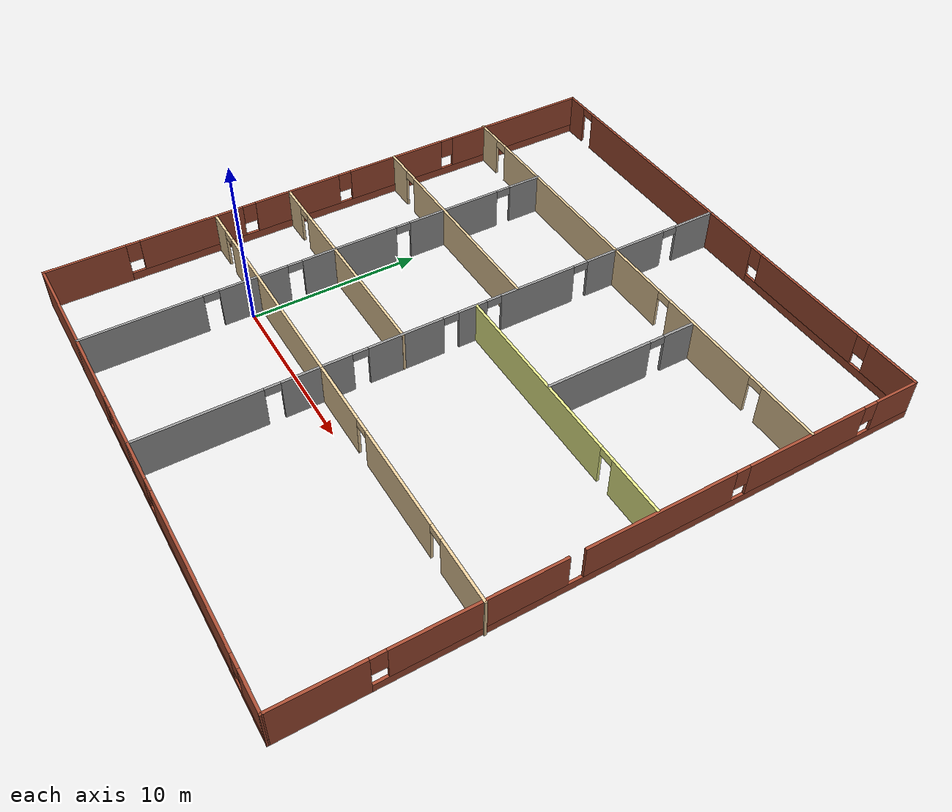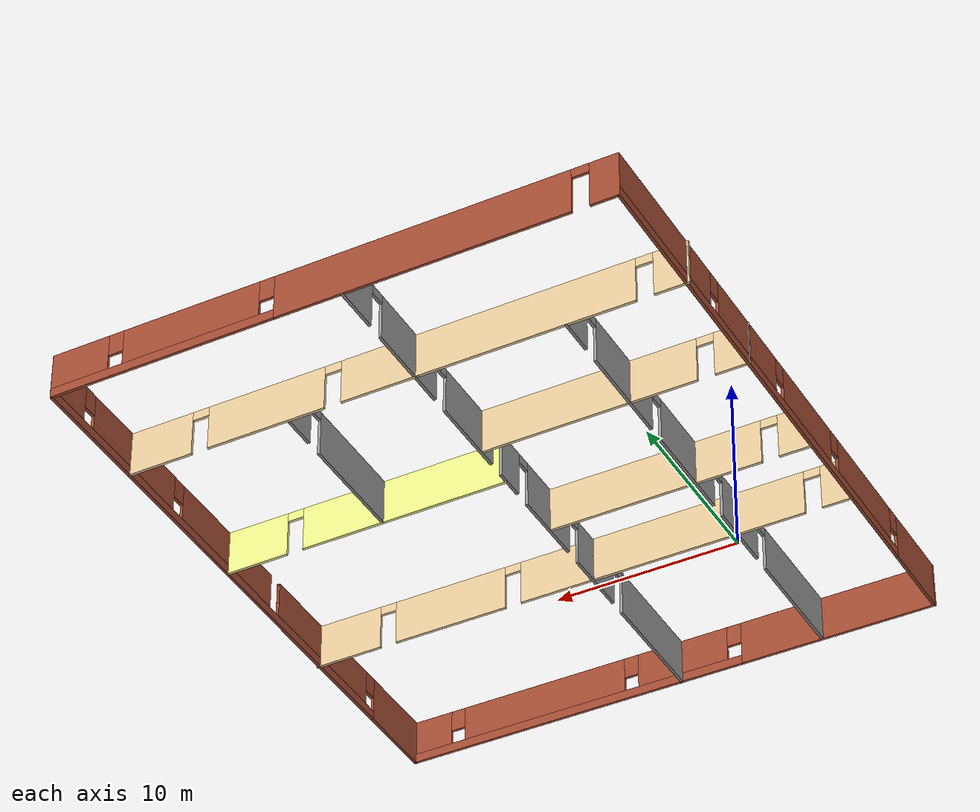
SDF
<?xml version='1.0'?>
<sdf version='1.7'>
  <model name='house'>
    <pose>8.50063 8.09856 0 0 -0 0</pose>
    <link name='Wall_10'>
      <pose>0.012019 -17.425 0 0 -0 -0.001132</pose>
      <visual name='Wall_10_Visual_0'>
        <pose>-9.64664 0 1.25 0 -0 0</pose>
        <geometry>
          <box>
            <size>10.7406 0.15 2.5</size>
          </box>
        </geometry>
        <material>
          <script>
            <uri>file://media/materials/scripts/gazebo.material</uri>
            <name>Gazebo/Bricks</name>
          </script>
          <ambient>1 1 1 1</ambient>
        </material>
        <meta>
          <layer>0</layer>
        </meta>
      </visual>
      <collision name='Wall_10_Collision_0'>
        <geometry>
          <box>
            <size>10.7406 0.15 2.5</size>
          </box>
        </geometry>
        <pose>-9.64664 0 1.25 0 -0 0</pose>
      </collision>
      <visual name='Wall_10_Visual_1'>
        <pose>5.37028 0 0.25 0 -0 0</pose>
        <geometry>
          <box>
            <size>19.2933 0.15 0.5</size>
          </box>
        </geometry>
        <material>
          <script>
            <uri>file://media/materials/scripts/gazebo.material</uri>
            <name>Gazebo/Bricks</name>
          </script>
          <ambient>1 1 1 1</ambient>
        </material>
        <meta>
          <layer>0</layer>
        </meta>
      </visual>
      <collision name='Wall_10_Collision_1'>
        <geometry>
          <box>
            <size>19.2933 0.15 0.5</size>
          </box>
        </geometry>
        <pose>5.37028 0 0.25 0 -0 0</pose>
      </collision>
      <visual name='Wall_10_Visual_2'>
        <pose>-0.916018 0 1.5 0 -0 0</pose>
        <geometry>
          <box>
            <size>5.12068 0.15 2</size>
          </box>
        </geometry>
        <material>
          <script>
            <uri>file://media/materials/scripts/gazebo.material</uri>
            <name>Gazebo/Bricks</name>
          </script>
          <ambient>1 1 1 1</ambient>
        </material>
        <meta>
          <layer>0</layer>
        </meta>
      </visual>
      <collision name='Wall_10_Collision_2'>
        <geometry>
          <box>
            <size>5.12068 0.15 2</size>
          </box>
        </geometry>
        <pose>-0.916018 0 1.5 0 -0 0</pose>
      </collision>
      <visual name='Wall_10_Visual_3'>
        <pose>7.18227 0 1.5 0 -0 0</pose>
        <geometry>
          <box>
            <size>9.47591 0.15 2</size>
          </box>
        </geometry>
        <material>
          <script>
            <uri>file://media/materials/scripts/gazebo.material</uri>
            <name>Gazebo/Bricks</name>
          </script>
          <ambient>1 1 1 1</ambient>
        </material>
        <meta>
          <layer>0</layer>
        </meta>
      </visual>
      <collision name='Wall_10_Collision_3'>
        <geometry>
          <box>
            <size>9.47591 0.15 2</size>
          </box>
        </geometry>
        <pose>7.18227 0 1.5 0 -0 0</pose>
      </collision>
      <visual name='Wall_10_Visual_4'>
        <pose>13.8686 0 1.5 0 -0 0</pose>
        <geometry>
          <box>
            <size>2.2967 0.15 2</size>
          </box>
        </geometry>
        <material>
          <script>
            <uri>file://media/materials/scripts/gazebo.material</uri>
            <name>Gazebo/Bricks</name>
          </script>
          <ambient>1 1 1 1</ambient>
        </material>
        <meta>
          <layer>0</layer>
        </meta>
      </visual>
      <collision name='Wall_10_Collision_4'>
        <geometry>
          <box>
            <size>2.2967 0.15 2</size>
          </box>
        </geometry>
        <pose>13.8686 0 1.5 0 -0 0</pose>
      </collision>
      <visual name='Wall_10_Visual_5'>
        <pose>-3.87636 0 1.9 0 -0 0</pose>
        <geometry>
          <box>
            <size>0.8 0.15 1.2</size>
          </box>
        </geometry>
        <material>
          <script>
            <uri>file://media/materials/scripts/gazebo.material</uri>
            <name>Gazebo/Bricks</name>
          </script>
          <ambient>1 1 1 1</ambient>
        </material>
        <meta>
          <layer>0</layer>
        </meta>
      </visual>
      <collision name='Wall_10_Collision_5'>
        <geometry>
          <box>
            <size>0.8 0.15 1.2</size>
          </box>
        </geometry>
        <pose>-3.87636 0 1.9 0 -0 0</pose>
      </collision>
      <visual name='Wall_10_Visual_6'>
        <pose>2.04432 0 1.9 0 -0 0</pose>
        <geometry>
          <box>
            <size>0.8 0.15 1.2</size>
          </box>
        </geometry>
        <material>
          <script>
            <uri>file://media/materials/scripts/gazebo.material</uri>
            <name>Gazebo/Bricks</name>
          </script>
          <ambient>1 1 1 1</ambient>
        </material>
        <meta>
          <layer>0</layer>
        </meta>
      </visual>
      <collision name='Wall_10_Collision_6'>
        <geometry>
          <box>
            <size>0.8 0.15 1.2</size>
          </box>
        </geometry>
        <pose>2.04432 0 1.9 0 -0 0</pose>
      </collision>
      <visual name='Wall_10_Visual_7'>
        <pose>12.3202 0 1.9 0 -0 0</pose>
        <geometry>
          <box>
            <size>0.8 0.15 1.2</size>
          </box>
        </geometry>
        <material>
          <script>
            <uri>file://media/materials/scripts/gazebo.material</uri>
            <name>Gazebo/Bricks</name>
          </script>
          <ambient>1 1 1 1</ambient>
        </material>
        <meta>
          <layer>0</layer>
        </meta>
      </visual>
      <collision name='Wall_10_Collision_7'>
        <geometry>
          <box>
            <size>0.8 0.15 1.2</size>
          </box>
        </geometry>
        <pose>12.3202 0 1.9 0 -0 0</pose>
      </collision>
    </link>
    <link name='Wall_12'>
      <pose>-14.9299 0.016958 0 0 -0 1.5708</pose>
      <visual name='Wall_12_Visual_0'>
        <pose>-15.1513 0 1.25 0 -0 0</pose>
        <geometry>
          <box>
            <size>4.69739 0.15 2.5</size>
          </box>
        </geometry>
        <material>
          <script>
            <uri>file://media/materials/scripts/gazebo.material</uri>
            <name>Gazebo/Bricks</name>
          </script>
          <ambient>1 1 1 1</ambient>
        </material>
        <meta>
          <layer>0</layer>
        </meta>
      </visual>
      <collision name='Wall_12_Collision_0'>
        <geometry>
          <box>
            <size>4.69739 0.15 2.5</size>
          </box>
        </geometry>
        <pose>-15.1513 0 1.25 0 -0 0</pose>
      </collision>
      <visual name='Wall_12_Visual_1'>
        <pose>2.34869 0 0.25 0 -0 0</pose>
        <geometry>
          <box>
            <size>30.3026 0.15 0.5</size>
          </box>
        </geometry>
        <material>
          <script>
            <uri>file://media/materials/scripts/gazebo.material</uri>
            <name>Gazebo/Bricks</name>
          </script>
          <ambient>1 1 1 1</ambient>
        </material>
        <meta>
          <layer>0</layer>
        </meta>
      </visual>
      <collision name='Wall_12_Collision_1'>
        <geometry>
          <box>
            <size>30.3026 0.15 0.5</size>
          </box>
        </geometry>
        <pose>2.34869 0 0.25 0 -0 0</pose>
      </collision>
      <visual name='Wall_12_Visual_2'>
        <pose>-8.89789 0 1.5 0 -0 0</pose>
        <geometry>
          <box>
            <size>6.20945 0.15 2</size>
          </box>
        </geometry>
        <material>
          <script>
            <uri>file://media/materials/scripts/gazebo.material</uri>
            <name>Gazebo/Bricks</name>
          </script>
          <ambient>1 1 1 1</ambient>
        </material>
        <meta>
          <layer>0</layer>
        </meta>
      </visual>
      <collision name='Wall_12_Collision_2'>
        <geometry>
          <box>
            <size>6.20945 0.15 2</size>
          </box>
        </geometry>
        <pose>-8.89789 0 1.5 0 -0 0</pose>
      </collision>
      <visual name='Wall_12_Visual_3'>
        <pose>-2.29675 0 1.5 0 -0 0</pose>
        <geometry>
          <box>
            <size>5.39282 0.15 2</size>
          </box>
        </geometry>
        <material>
          <script>
            <uri>file://media/materials/scripts/gazebo.material</uri>
            <name>Gazebo/Bricks</name>
          </script>
          <ambient>1 1 1 1</ambient>
        </material>
        <meta>
          <layer>0</layer>
        </meta>
      </visual>
      <collision name='Wall_12_Collision_3'>
        <geometry>
          <box>
            <size>5.39282 0.15 2</size>
          </box>
        </geometry>
        <pose>-2.29675 0 1.5 0 -0 0</pose>
      </collision>
      <visual name='Wall_12_Visual_4'>
        <pose>4.33841 0 1.5 0 -0 0</pose>
        <geometry>
          <box>
            <size>6.2775 0.15 2</size>
          </box>
        </geometry>
        <material>
          <script>
            <uri>file://media/materials/scripts/gazebo.material</uri>
            <name>Gazebo/Bricks</name>
          </script>
          <ambient>1 1 1 1</ambient>
        </material>
        <meta>
          <layer>0</layer>
        </meta>
      </visual>
      <collision name='Wall_12_Collision_4'>
        <geometry>
          <box>
            <size>6.2775 0.15 2</size>
          </box>
        </geometry>
        <pose>4.33841 0 1.5 0 -0 0</pose>
      </collision>
      <visual name='Wall_12_Visual_5'>
        <pose>12.8886 0 1.5 0 -0 0</pose>
        <geometry>
          <box>
            <size>9.22284 0.15 2</size>
          </box>
        </geometry>
        <material>
          <script>
            <uri>file://media/materials/scripts/gazebo.material</uri>
            <name>Gazebo/Bricks</name>
          </script>
          <ambient>1 1 1 1</ambient>
        </material>
        <meta>
          <layer>0</layer>
        </meta>
      </visual>
      <collision name='Wall_12_Collision_5'>
        <geometry>
          <box>
            <size>9.22284 0.15 2</size>
          </box>
        </geometry>
        <pose>12.8886 0 1.5 0 -0 0</pose>
      </collision>
      <visual name='Wall_12_Visual_6'>
        <pose>-12.4026 0 1.9 0 -0 0</pose>
        <geometry>
          <box>
            <size>0.8 0.15 1.2</size>
          </box>
        </geometry>
        <material>
          <script>
            <uri>file://media/materials/scripts/gazebo.material</uri>
            <name>Gazebo/Bricks</name>
          </script>
          <ambient>1 1 1 1</ambient>
        </material>
        <meta>
          <layer>0</layer>
        </meta>
      </visual>
      <collision name='Wall_12_Collision_6'>
        <geometry>
          <box>
            <size>0.8 0.15 1.2</size>
          </box>
        </geometry>
        <pose>-12.4026 0 1.9 0 -0 0</pose>
      </collision>
      <visual name='Wall_12_Visual_7'>
        <pose>-5.39316 0 1.9 0 -0 0</pose>
        <geometry>
          <box>
            <size>0.8 0.15 1.2</size>
          </box>
        </geometry>
        <material>
          <script>
            <uri>file://media/materials/scripts/gazebo.material</uri>
            <name>Gazebo/Bricks</name>
          </script>
          <ambient>1 1 1 1</ambient>
        </material>
        <meta>
          <layer>0</layer>
        </meta>
      </visual>
      <collision name='Wall_12_Collision_7'>
        <geometry>
          <box>
            <size>0.8 0.15 1.2</size>
          </box>
        </geometry>
        <pose>-5.39316 0 1.9 0 -0 0</pose>
      </collision>
      <visual name='Wall_12_Visual_8'>
        <pose>0.799657 0 1.9 0 -0 0</pose>
        <geometry>
          <box>
            <size>0.8 0.15 1.2</size>
          </box>
        </geometry>
        <material>
          <script>
            <uri>file://media/materials/scripts/gazebo.material</uri>
            <name>Gazebo/Bricks</name>
          </script>
          <ambient>1 1 1 1</ambient>
        </material>
        <meta>
          <layer>0</layer>
        </meta>
      </visual>
      <collision name='Wall_12_Collision_8'>
        <geometry>
          <box>
            <size>0.8 0.15 1.2</size>
          </box>
        </geometry>
        <pose>0.799657 0 1.9 0 -0 0</pose>
      </collision>
      <visual name='Wall_12_Visual_9'>
        <pose>7.87716 0 1.9 0 -0 0</pose>
        <geometry>
          <box>
            <size>0.8 0.15 1.2</size>
          </box>
        </geometry>
        <material>
          <script>
            <uri>file://media/materials/scripts/gazebo.material</uri>
            <name>Gazebo/Bricks</name>
          </script>
          <ambient>1 1 1 1</ambient>
        </material>
        <meta>
          <layer>0</layer>
        </meta>
      </visual>
      <collision name='Wall_12_Collision_9'>
        <geometry>
          <box>
            <size>0.8 0.15 1.2</size>
          </box>
        </geometry>
        <pose>7.87716 0 1.9 0 -0 0</pose>
      </collision>
    </link>
    <link name='Wall_16'>
      <pose>-0.004898 17.442 0 0 -0 0</pose>
      <visual name='Wall_16_Visual_0'>
        <pose>-14.2483 0 1.25 0 -0 0</pose>
        <geometry>
          <box>
            <size>1.50349 0.15 2.5</size>
          </box>
        </geometry>
        <material>
          <script>
            <uri>file://media/materials/scripts/gazebo.material</uri>
            <name>Gazebo/Bricks</name>
          </script>
          <ambient>1 1 1 1</ambient>
        </material>
        <meta>
          <layer>0</layer>
        </meta>
      </visual>
      <collision name='Wall_16_Collision_0'>
        <geometry>
          <box>
            <size>1.50349 0.15 2.5</size>
          </box>
        </geometry>
        <pose>-14.2483 0 1.25 0 -0 0</pose>
      </collision>
      <visual name='Wall_16_Visual_1'>
        <pose>-4.88918 0 1.25 0 -0 0</pose>
        <geometry>
          <box>
            <size>15.4147 0.15 2.5</size>
          </box>
        </geometry>
        <material>
          <script>
            <uri>file://media/materials/scripts/gazebo.material</uri>
            <name>Gazebo/Bricks</name>
          </script>
          <ambient>1 1 1 1</ambient>
        </material>
        <meta>
          <layer>0</layer>
        </meta>
      </visual>
      <collision name='Wall_16_Collision_1'>
        <geometry>
          <box>
            <size>15.4147 0.15 2.5</size>
          </box>
        </geometry>
        <pose>-4.88918 0 1.25 0 -0 0</pose>
      </collision>
      <visual name='Wall_16_Visual_2'>
        <pose>8.90907 0 0.25 0 -0 0</pose>
        <geometry>
          <box>
            <size>12.1819 0.15 0.5</size>
          </box>
        </geometry>
        <material>
          <script>
            <uri>file://media/materials/scripts/gazebo.material</uri>
            <name>Gazebo/Bricks</name>
          </script>
          <ambient>1 1 1 1</ambient>
        </material>
        <meta>
          <layer>0</layer>
        </meta>
      </visual>
      <collision name='Wall_16_Collision_2'>
        <geometry>
          <box>
            <size>12.1819 0.15 0.5</size>
          </box>
        </geometry>
        <pose>8.90907 0 0.25 0 -0 0</pose>
      </collision>
      <visual name='Wall_16_Visual_3'>
        <pose>7.33535 0 1.5 0 -0 0</pose>
        <geometry>
          <box>
            <size>7.4344 0.15 2</size>
          </box>
        </geometry>
        <material>
          <script>
            <uri>file://media/materials/scripts/gazebo.material</uri>
            <name>Gazebo/Bricks</name>
          </script>
          <ambient>1 1 1 1</ambient>
        </material>
        <meta>
          <layer>0</layer>
        </meta>
      </visual>
      <collision name='Wall_16_Collision_3'>
        <geometry>
          <box>
            <size>7.4344 0.15 2</size>
          </box>
        </geometry>
        <pose>7.33535 0 1.5 0 -0 0</pose>
      </collision>
      <visual name='Wall_16_Visual_4'>
        <pose>13.4263 0 1.5 0 -0 0</pose>
        <geometry>
          <box>
            <size>3.14745 0.15 2</size>
          </box>
        </geometry>
        <material>
          <script>
            <uri>file://media/materials/scripts/gazebo.material</uri>
            <name>Gazebo/Bricks</name>
          </script>
          <ambient>1 1 1 1</ambient>
        </material>
        <meta>
          <layer>0</layer>
        </meta>
      </visual>
      <collision name='Wall_16_Collision_4'>
        <geometry>
          <box>
            <size>3.14745 0.15 2</size>
          </box>
        </geometry>
        <pose>13.4263 0 1.5 0 -0 0</pose>
      </collision>
      <visual name='Wall_16_Visual_5'>
        <pose>3.21814 0 1.9 0 -0 0</pose>
        <geometry>
          <box>
            <size>0.8 0.15 1.2</size>
          </box>
        </geometry>
        <material>
          <script>
            <uri>file://media/materials/scripts/gazebo.material</uri>
            <name>Gazebo/Bricks</name>
          </script>
          <ambient>1 1 1 1</ambient>
        </material>
        <meta>
          <layer>0</layer>
        </meta>
      </visual>
      <collision name='Wall_16_Collision_5'>
        <geometry>
          <box>
            <size>0.8 0.15 1.2</size>
          </box>
        </geometry>
        <pose>3.21814 0 1.9 0 -0 0</pose>
      </collision>
      <visual name='Wall_16_Visual_6'>
        <pose>11.4525 0 1.9 0 -0 0</pose>
        <geometry>
          <box>
            <size>0.8 0.15 1.2</size>
          </box>
        </geometry>
        <material>
          <script>
            <uri>file://media/materials/scripts/gazebo.material</uri>
            <name>Gazebo/Bricks</name>
          </script>
          <ambient>1 1 1 1</ambient>
        </material>
        <meta>
          <layer>0</layer>
        </meta>
      </visual>
      <collision name='Wall_16_Collision_6'>
        <geometry>
          <box>
            <size>0.8 0.15 1.2</size>
          </box>
        </geometry>
        <pose>11.4525 0 1.9 0 -0 0</pose>
      </collision>
      <visual name='Wall_16_Visual_7'>
        <pose>-13.0465 0 2.25 0 -0 0</pose>
        <geometry>
          <box>
            <size>0.9 0.15 0.5</size>
          </box>
        </geometry>
        <material>
          <script>
            <uri>file://media/materials/scripts/gazebo.material</uri>
            <name>Gazebo/Bricks</name>
          </script>
          <ambient>1 1 1 1</ambient>
        </material>
        <meta>
          <layer>0</layer>
        </meta>
      </visual>
      <collision name='Wall_16_Collision_7'>
        <geometry>
          <box>
            <size>0.9 0.15 0.5</size>
          </box>
        </geometry>
        <pose>-13.0465 0 2.25 0 -0 0</pose>
      </collision>
    </link>
    <link name='Wall_18'>
      <pose>14.9539 -0.016876 0 0 -0 1.5708</pose>
      <visual name='Wall_18_Visual_0'>
        <pose>-15.1344 0 1.25 0 -0 0</pose>
        <geometry>
          <box>
            <size>4.73122 0.15 2.5</size>
          </box>
        </geometry>
        <material>
          <script>
            <uri>file://media/materials/scripts/gazebo.material</uri>
            <name>Gazebo/Bricks</name>
          </script>
          <ambient>0.921569 0.807843 0.615686 1</ambient>
        </material>
        <meta>
          <layer>0</layer>
        </meta>
      </visual>
      <collision name='Wall_18_Collision_0'>
        <geometry>
          <box>
            <size>4.73122 0.15 2.5</size>
          </box>
        </geometry>
        <pose>-15.1344 0 1.25 0 -0 0</pose>
      </collision>
      <visual name='Wall_18_Visual_1'>
        <pose>2.36561 0 0.25 0 -0 0</pose>
        <geometry>
          <box>
            <size>30.2688 0.15 0.5</size>
          </box>
        </geometry>
        <material>
          <script>
            <uri>file://media/materials/scripts/gazebo.material</uri>
            <name>Gazebo/Bricks</name>
          </script>
          <ambient>0.921569 0.807843 0.615686 1</ambient>
        </material>
        <meta>
          <layer>0</layer>
        </meta>
      </visual>
      <collision name='Wall_18_Collision_1'>
        <geometry>
          <box>
            <size>30.2688 0.15 0.5</size>
          </box>
        </geometry>
        <pose>2.36561 0 0.25 0 -0 0</pose>
      </collision>
      <visual name='Wall_18_Visual_2'>
        <pose>-7.53702 0 1.5 0 -0 0</pose>
        <geometry>
          <box>
            <size>8.86352 0.15 2</size>
          </box>
        </geometry>
        <material>
          <script>
            <uri>file://media/materials/scripts/gazebo.material</uri>
            <name>Gazebo/Bricks</name>
          </script>
          <ambient>0.921569 0.807843 0.615686 1</ambient>
        </material>
        <meta>
          <layer>0</layer>
        </meta>
      </visual>
      <collision name='Wall_18_Collision_2'>
        <geometry>
          <box>
            <size>8.86352 0.15 2</size>
          </box>
        </geometry>
        <pose>-7.53702 0 1.5 0 -0 0</pose>
      </collision>
      <visual name='Wall_18_Visual_3'>
        <pose>1.88831 0 1.5 0 -0 0</pose>
        <geometry>
          <box>
            <size>8.38715 0.15 2</size>
          </box>
        </geometry>
        <material>
          <script>
            <uri>file://media/materials/scripts/gazebo.material</uri>
            <name>Gazebo/Bricks</name>
          </script>
          <ambient>0.921569 0.807843 0.615686 1</ambient>
        </material>
        <meta>
          <layer>0</layer>
        </meta>
      </visual>
      <collision name='Wall_18_Collision_3'>
        <geometry>
          <box>
            <size>8.38715 0.15 2</size>
          </box>
        </geometry>
        <pose>1.88831 0 1.5 0 -0 0</pose>
      </collision>
      <visual name='Wall_18_Visual_4'>
        <pose>10.463 0 1.5 0 -0 0</pose>
        <geometry>
          <box>
            <size>7.16219 0.15 2</size>
          </box>
        </geometry>
        <material>
          <script>
            <uri>file://media/materials/scripts/gazebo.material</uri>
            <name>Gazebo/Bricks</name>
          </script>
          <ambient>0.921569 0.807843 0.615686 1</ambient>
        </material>
        <meta>
          <layer>0</layer>
        </meta>
      </visual>
      <collision name='Wall_18_Collision_4'>
        <geometry>
          <box>
            <size>7.16219 0.15 2</size>
          </box>
        </geometry>
        <pose>10.463 0 1.5 0 -0 0</pose>
      </collision>
      <visual name='Wall_18_Visual_5'>
        <pose>16.172 0 1.5 0 -0 0</pose>
        <geometry>
          <box>
            <size>2.65592 0.15 2</size>
          </box>
        </geometry>
        <material>
          <script>
            <uri>file://media/materials/scripts/gazebo.material</uri>
            <name>Gazebo/Bricks</name>
          </script>
          <ambient>0.921569 0.807843 0.615686 1</ambient>
        </material>
        <meta>
          <layer>0</layer>
        </meta>
      </visual>
      <collision name='Wall_18_Collision_5'>
        <geometry>
          <box>
            <size>2.65592 0.15 2</size>
          </box>
        </geometry>
        <pose>16.172 0 1.5 0 -0 0</pose>
      </collision>
      <visual name='Wall_18_Visual_6'>
        <pose>-12.3688 0 1.9 0 -0 0</pose>
        <geometry>
          <box>
            <size>0.8 0.15 1.2</size>
          </box>
        </geometry>
        <material>
          <script>
            <uri>file://media/materials/scripts/gazebo.material</uri>
            <name>Gazebo/Bricks</name>
          </script>
          <ambient>0.921569 0.807843 0.615686 1</ambient>
        </material>
        <meta>
          <layer>0</layer>
        </meta>
      </visual>
      <collision name='Wall_18_Collision_6'>
        <geometry>
          <box>
            <size>0.8 0.15 1.2</size>
          </box>
        </geometry>
        <pose>-12.3688 0 1.9 0 -0 0</pose>
      </collision>
      <visual name='Wall_18_Visual_7'>
        <pose>-3.10526 0 1.9 0 -0 0</pose>
        <geometry>
          <box>
            <size>0 0.15 1.2</size>
          </box>
        </geometry>
        <material>
          <script>
            <uri>file://media/materials/scripts/gazebo.material</uri>
            <name>Gazebo/Bricks</name>
          </script>
          <ambient>0.921569 0.807843 0.615686 1</ambient>
        </material>
        <meta>
          <layer>0</layer>
        </meta>
      </visual>
      <collision name='Wall_18_Collision_7'>
        <geometry>
          <box>
            <size>0 0.15 1.2</size>
          </box>
        </geometry>
        <pose>-3.10526 0 1.9 0 -0 0</pose>
      </collision>
      <visual name='Wall_18_Visual_8'>
        <pose>6.48188 0 1.9 0 -0 0</pose>
        <geometry>
          <box>
            <size>0.8 0.15 1.2</size>
          </box>
        </geometry>
        <material>
          <script>
            <uri>file://media/materials/scripts/gazebo.material</uri>
            <name>Gazebo/Bricks</name>
          </script>
          <ambient>0.921569 0.807843 0.615686 1</ambient>
        </material>
        <meta>
          <layer>0</layer>
        </meta>
      </visual>
      <collision name='Wall_18_Collision_8'>
        <geometry>
          <box>
            <size>0.8 0.15 1.2</size>
          </box>
        </geometry>
        <pose>6.48188 0 1.9 0 -0 0</pose>
      </collision>
      <visual name='Wall_18_Visual_9'>
        <pose>14.4441 0 1.9 0 -0 0</pose>
        <geometry>
          <box>
            <size>0.8 0.15 1.2</size>
          </box>
        </geometry>
        <material>
          <script>
            <uri>file://media/materials/scripts/gazebo.material</uri>
            <name>Gazebo/Bricks</name>
          </script>
          <ambient>0.921569 0.807843 0.615686 1</ambient>
        </material>
        <meta>
          <layer>0</layer>
        </meta>
      </visual>
      <collision name='Wall_18_Collision_9'>
        <geometry>
          <box>
            <size>0.8 0.15 1.2</size>
          </box>
        </geometry>
        <pose>14.4441 0 1.9 0 -0 0</pose>
      </collision>
    </link>
    <link name='Wall_22'>
      <pose>-0.801878 -0.00347 0 0 -0 -1.5708</pose>
      <visual name='Wall_22_Visual_0'>
        <pose>-16.1903 0 1.25 0 -0 0</pose>
        <geometry>
          <box>
            <size>2.61933 0.15 2.5</size>
          </box>
        </geometry>
        <material>
          <script>
            <uri>file://media/materials/scripts/gazebo.material</uri>
            <name>Gazebo/Grey</name>
          </script>
          <ambient>1 1 1 1</ambient>
        </material>
        <meta>
          <layer>0</layer>
        </meta>
      </visual>
      <collision name='Wall_22_Collision_0'>
        <geometry>
          <box>
            <size>2.61933 0.15 2.5</size>
          </box>
        </geometry>
        <pose>-16.1903 0 1.25 0 -0 0</pose>
      </collision>
      <visual name='Wall_22_Visual_1'>
        <pose>-11.3683 0 1.25 0 -0 0</pose>
        <geometry>
          <box>
            <size>5.22476 0.15 2.5</size>
          </box>
        </geometry>
        <material>
          <script>
            <uri>file://media/materials/scripts/gazebo.material</uri>
            <name>Gazebo/Grey</name>
          </script>
          <ambient>1 1 1 1</ambient>
        </material>
        <meta>
          <layer>0</layer>
        </meta>
      </visual>
      <collision name='Wall_22_Collision_1'>
        <geometry>
          <box>
            <size>5.22476 0.15 2.5</size>
          </box>
        </geometry>
        <pose>-11.3683 0 1.25 0 -0 0</pose>
      </collision>
      <visual name='Wall_22_Visual_2'>
        <pose>-5.51574 0 1.25 0 -0 0</pose>
        <geometry>
          <box>
            <size>4.68034 0.15 2.5</size>
          </box>
        </geometry>
        <material>
          <script>
            <uri>file://media/materials/scripts/gazebo.material</uri>
            <name>Gazebo/Grey</name>
          </script>
          <ambient>1 1 1 1</ambient>
        </material>
        <meta>
          <layer>0</layer>
        </meta>
      </visual>
      <collision name='Wall_22_Collision_2'>
        <geometry>
          <box>
            <size>4.68034 0.15 2.5</size>
          </box>
        </geometry>
        <pose>-5.51574 0 1.25 0 -0 0</pose>
      </collision>
      <visual name='Wall_22_Visual_3'>
        <pose>-1.39854 0 1.25 0 -0 0</pose>
        <geometry>
          <box>
            <size>1.75406 0.15 2.5</size>
          </box>
        </geometry>
        <material>
          <script>
            <uri>file://media/materials/scripts/gazebo.material</uri>
            <name>Gazebo/Grey</name>
          </script>
          <ambient>1 1 1 1</ambient>
        </material>
        <meta>
          <layer>0</layer>
        </meta>
      </visual>
      <collision name='Wall_22_Collision_3'>
        <geometry>
          <box>
            <size>1.75406 0.15 2.5</size>
          </box>
        </geometry>
        <pose>-1.39854 0 1.25 0 -0 0</pose>
      </collision>
      <visual name='Wall_22_Visual_4'>
        <pose>2.58256 0 1.25 0 -0 0</pose>
        <geometry>
          <box>
            <size>4.40813 0.15 2.5</size>
          </box>
        </geometry>
        <material>
          <script>
            <uri>file://media/materials/scripts/gazebo.material</uri>
            <name>Gazebo/Grey</name>
          </script>
          <ambient>1 1 1 1</ambient>
        </material>
        <meta>
          <layer>0</layer>
        </meta>
      </visual>
      <collision name='Wall_22_Collision_4'>
        <geometry>
          <box>
            <size>4.40813 0.15 2.5</size>
          </box>
        </geometry>
        <pose>2.58256 0 1.25 0 -0 0</pose>
      </collision>
      <visual name='Wall_22_Visual_5'>
        <pose>7.6525 0 1.25 0 -0 0</pose>
        <geometry>
          <box>
            <size>3.93176 0.15 2.5</size>
          </box>
        </geometry>
        <material>
          <script>
            <uri>file://media/materials/scripts/gazebo.material</uri>
            <name>Gazebo/Grey</name>
          </script>
          <ambient>1 1 1 1</ambient>
        </material>
        <meta>
          <layer>0</layer>
        </meta>
      </visual>
      <collision name='Wall_22_Collision_5'>
        <geometry>
          <box>
            <size>3.93176 0.15 2.5</size>
          </box>
        </geometry>
        <pose>7.6525 0 1.25 0 -0 0</pose>
      </collision>
      <visual name='Wall_22_Visual_6'>
        <pose>14.0092 0 1.25 0 -0 0</pose>
        <geometry>
          <box>
            <size>6.98162 0.15 2.5</size>
          </box>
        </geometry>
        <material>
          <script>
            <uri>file://media/materials/scripts/gazebo.material</uri>
            <name>Gazebo/Grey</name>
          </script>
          <ambient>1 1 1 1</ambient>
        </material>
        <meta>
          <layer>0</layer>
        </meta>
      </visual>
      <collision name='Wall_22_Collision_6'>
        <geometry>
          <box>
            <size>6.98162 0.15 2.5</size>
          </box>
        </geometry>
        <pose>14.0092 0 1.25 0 -0 0</pose>
      </collision>
      <visual name='Wall_22_Visual_7'>
        <pose>-14.4307 0 2.25 0 -0 0</pose>
        <geometry>
          <box>
            <size>0.9 0.15 0.5</size>
          </box>
        </geometry>
        <material>
          <script>
            <uri>file://media/materials/scripts/gazebo.material</uri>
            <name>Gazebo/Grey</name>
          </script>
          <ambient>1 1 1 1</ambient>
        </material>
        <meta>
          <layer>0</layer>
        </meta>
      </visual>
      <collision name='Wall_22_Collision_7'>
        <geometry>
          <box>
            <size>0.9 0.15 0.5</size>
          </box>
        </geometry>
        <pose>-14.4307 0 2.25 0 -0 0</pose>
      </collision>
      <visual name='Wall_22_Visual_8'>
        <pose>-8.30591 0 2.25 0 -0 0</pose>
        <geometry>
          <box>
            <size>0.9 0.15 0.5</size>
          </box>
        </geometry>
        <material>
          <script>
            <uri>file://media/materials/scripts/gazebo.material</uri>
            <name>Gazebo/Grey</name>
          </script>
          <ambient>1 1 1 1</ambient>
        </material>
        <meta>
          <layer>0</layer>
        </meta>
      </visual>
      <collision name='Wall_22_Collision_8'>
        <geometry>
          <box>
            <size>0.9 0.15 0.5</size>
          </box>
        </geometry>
        <pose>-8.30591 0 2.25 0 -0 0</pose>
      </collision>
      <visual name='Wall_22_Visual_9'>
        <pose>-2.72557 0 2.25 0 -0 0</pose>
        <geometry>
          <box>
            <size>0.9 0.15 0.5</size>
          </box>
        </geometry>
        <material>
          <script>
            <uri>file://media/materials/scripts/gazebo.material</uri>
            <name>Gazebo/Grey</name>
          </script>
          <ambient>1 1 1 1</ambient>
        </material>
        <meta>
          <layer>0</layer>
        </meta>
      </visual>
      <collision name='Wall_22_Collision_9'>
        <geometry>
          <box>
            <size>0.9 0.15 0.5</size>
          </box>
        </geometry>
        <pose>-2.72557 0 2.25 0 -0 0</pose>
      </collision>
      <visual name='Wall_22_Visual_10'>
        <pose>-0.071503 0 2.25 0 -0 0</pose>
        <geometry>
          <box>
            <size>0.9 0.15 0.5</size>
          </box>
        </geometry>
        <material>
          <script>
            <uri>file://media/materials/scripts/gazebo.material</uri>
            <name>Gazebo/Grey</name>
          </script>
          <ambient>1 1 1 1</ambient>
        </material>
        <meta>
          <layer>0</layer>
        </meta>
      </visual>
      <collision name='Wall_22_Collision_10'>
        <geometry>
          <box>
            <size>0.9 0.15 0.5</size>
          </box>
        </geometry>
        <pose>-0.071503 0 2.25 0 -0 0</pose>
      </collision>
      <visual name='Wall_22_Visual_11'>
        <pose>5.23663 0 2.25 0 -0 0</pose>
        <geometry>
          <box>
            <size>0.9 0.15 0.5</size>
          </box>
        </geometry>
        <material>
          <script>
            <uri>file://media/materials/scripts/gazebo.material</uri>
            <name>Gazebo/Grey</name>
          </script>
          <ambient>1 1 1 1</ambient>
        </material>
        <meta>
          <layer>0</layer>
        </meta>
      </visual>
      <collision name='Wall_22_Collision_11'>
        <geometry>
          <box>
            <size>0.9 0.15 0.5</size>
          </box>
        </geometry>
        <pose>5.23663 0 2.25 0 -0 0</pose>
      </collision>
      <visual name='Wall_22_Visual_12'>
        <pose>10.0684 0 2.25 0 -0 0</pose>
        <geometry>
          <box>
            <size>0.9 0.15 0.5</size>
          </box>
        </geometry>
        <material>
          <script>
            <uri>file://media/materials/scripts/gazebo.material</uri>
            <name>Gazebo/Grey</name>
          </script>
          <ambient>1 1 1 1</ambient>
        </material>
        <meta>
          <layer>0</layer>
        </meta>
      </visual>
      <collision name='Wall_22_Collision_12'>
        <geometry>
          <box>
            <size>0.9 0.15 0.5</size>
          </box>
        </geometry>
        <pose>10.0684 0 2.25 0 -0 0</pose>
      </collision>
    </link>
    <link name='Wall_24'>
      <pose>-7.97494 10.6843 0 0 -0 0</pose>
      <visual name='Wall_24_Visual_0'>
        <pose>-6.22365 0 1.25 0 -0 0</pose>
        <geometry>
          <box>
            <size>1.80269 0.15 2.5</size>
          </box>
        </geometry>
        <material>
          <script>
            <uri>file://media/materials/scripts/gazebo.material</uri>
            <name>Gazebo/Grey</name>
          </script>
          <ambient>0.921569 0.807843 0.615686 1</ambient>
        </material>
        <meta>
          <layer>0</layer>
        </meta>
      </visual>
      <collision name='Wall_24_Collision_0'>
        <geometry>
          <box>
            <size>1.80269 0.15 2.5</size>
          </box>
        </geometry>
        <pose>-6.22365 0 1.25 0 -0 0</pose>
      </collision>
      <visual name='Wall_24_Visual_1'>
        <pose>1.35135 0 1.25 0 -0 0</pose>
        <geometry>
          <box>
            <size>11.5473 0.15 2.5</size>
          </box>
        </geometry>
        <material>
          <script>
            <uri>file://media/materials/scripts/gazebo.material</uri>
            <name>Gazebo/Grey</name>
          </script>
          <ambient>0.921569 0.807843 0.615686 1</ambient>
        </material>
        <meta>
          <layer>0</layer>
        </meta>
      </visual>
      <collision name='Wall_24_Collision_1'>
        <geometry>
          <box>
            <size>11.5473 0.15 2.5</size>
          </box>
        </geometry>
        <pose>1.35135 0 1.25 0 -0 0</pose>
      </collision>
      <visual name='Wall_24_Visual_2'>
        <pose>-4.87231 0 2.25 0 -0 0</pose>
        <geometry>
          <box>
            <size>0.9 0.15 0.5</size>
          </box>
        </geometry>
        <material>
          <script>
            <uri>file://media/materials/scripts/gazebo.material</uri>
            <name>Gazebo/Grey</name>
          </script>
          <ambient>0.921569 0.807843 0.615686 1</ambient>
        </material>
        <meta>
          <layer>0</layer>
        </meta>
      </visual>
      <collision name='Wall_24_Collision_2'>
        <geometry>
          <box>
            <size>0.9 0.15 0.5</size>
          </box>
        </geometry>
        <pose>-4.87231 0 2.25 0 -0 0</pose>
      </collision>
    </link>
    <link name='Wall_25'>
      <pose>7.00006 10.6843 0 0 -0 0</pose>
      <visual name='Wall_25_Visual_0'>
        <pose>-5.91425 0 1.25 0 -0 0</pose>
        <geometry>
          <box>
            <size>4.1715 0.15 2.5</size>
          </box>
        </geometry>
        <material>
          <script>
            <uri>file://media/materials/scripts/gazebo.material</uri>
            <name>Gazebo/Grey</name>
          </script>
          <ambient>0.921569 0.807843 0.615686 1</ambient>
        </material>
        <meta>
          <layer>0</layer>
        </meta>
      </visual>
      <collision name='Wall_25_Collision_0'>
        <geometry>
          <box>
            <size>4.1715 0.15 2.5</size>
          </box>
        </geometry>
        <pose>-5.91425 0 1.25 0 -0 0</pose>
      </collision>
      <visual name='Wall_25_Visual_1'>
        <pose>0.29636 0 1.25 0 -0 0</pose>
        <geometry>
          <box>
            <size>6.44972 0.15 2.5</size>
          </box>
        </geometry>
        <material>
          <script>
            <uri>file://media/materials/scripts/gazebo.material</uri>
            <name>Gazebo/Grey</name>
          </script>
          <ambient>0.921569 0.807843 0.615686 1</ambient>
        </material>
        <meta>
          <layer>0</layer>
        </meta>
      </visual>
      <collision name='Wall_25_Collision_1'>
        <geometry>
          <box>
            <size>6.44972 0.15 2.5</size>
          </box>
        </geometry>
        <pose>0.29636 0 1.25 0 -0 0</pose>
      </collision>
      <visual name='Wall_25_Visual_2'>
        <pose>6.21061 0 1.25 0 -0 0</pose>
        <geometry>
          <box>
            <size>3.57878 0.15 2.5</size>
          </box>
        </geometry>
        <material>
          <script>
            <uri>file://media/materials/scripts/gazebo.material</uri>
            <name>Gazebo/Grey</name>
          </script>
          <ambient>0.921569 0.807843 0.615686 1</ambient>
        </material>
        <meta>
          <layer>0</layer>
        </meta>
      </visual>
      <collision name='Wall_25_Collision_2'>
        <geometry>
          <box>
            <size>3.57878 0.15 2.5</size>
          </box>
        </geometry>
        <pose>6.21061 0 1.25 0 -0 0</pose>
      </collision>
      <visual name='Wall_25_Visual_3'>
        <pose>-3.3785 0 2.25 0 -0 0</pose>
        <geometry>
          <box>
            <size>0.9 0.15 0.5</size>
          </box>
        </geometry>
        <material>
          <script>
            <uri>file://media/materials/scripts/gazebo.material</uri>
            <name>Gazebo/Grey</name>
          </script>
          <ambient>0.921569 0.807843 0.615686 1</ambient>
        </material>
        <meta>
          <layer>0</layer>
        </meta>
      </visual>
      <collision name='Wall_25_Collision_3'>
        <geometry>
          <box>
            <size>0.9 0.15 0.5</size>
          </box>
        </geometry>
        <pose>-3.3785 0 2.25 0 -0 0</pose>
      </collision>
      <visual name='Wall_25_Visual_4'>
        <pose>3.97122 0 2.25 0 -0 0</pose>
        <geometry>
          <box>
            <size>0.9 0.15 0.5</size>
          </box>
        </geometry>
        <material>
          <script>
            <uri>file://media/materials/scripts/gazebo.material</uri>
            <name>Gazebo/Grey</name>
          </script>
          <ambient>0.921569 0.807843 0.615686 1</ambient>
        </material>
        <meta>
          <layer>0</layer>
        </meta>
      </visual>
      <collision name='Wall_25_Collision_4'>
        <geometry>
          <box>
            <size>0.9 0.15 0.5</size>
          </box>
        </geometry>
        <pose>3.97122 0 2.25 0 -0 0</pose>
      </collision>
    </link>
    <link name='Wall_27'>
      <pose>7.05 1.63429 0 0 -0 0</pose>
      <visual name='Wall_27_Visual_0'>
        <pose>-2.16783 0 1.25 0 -0 0</pose>
        <geometry>
          <box>
            <size>11.4143 0.15 2.5</size>
          </box>
        </geometry>
        <material>
          <script>
            <uri>file://media/materials/scripts/gazebo.material</uri>
            <name>Gazebo/Grey</name>
          </script>
          <ambient>0.945098 0.968627 0.552941 1</ambient>
        </material>
        <meta>
          <layer>0</layer>
        </meta>
      </visual>
      <collision name='Wall_27_Collision_0'>
        <geometry>
          <box>
            <size>11.4143 0.15 2.5</size>
          </box>
        </geometry>
        <pose>-2.16783 0 1.25 0 -0 0</pose>
      </collision>
      <visual name='Wall_27_Visual_1'>
        <pose>6.15717 0 1.25 0 -0 0</pose>
        <geometry>
          <box>
            <size>3.43567 0.15 2.5</size>
          </box>
        </geometry>
        <material>
          <script>
            <uri>file://media/materials/scripts/gazebo.material</uri>
            <name>Gazebo/Grey</name>
          </script>
          <ambient>0.945098 0.968627 0.552941 1</ambient>
        </material>
        <meta>
          <layer>0</layer>
        </meta>
      </visual>
      <collision name='Wall_27_Collision_1'>
        <geometry>
          <box>
            <size>3.43567 0.15 2.5</size>
          </box>
        </geometry>
        <pose>6.15717 0 1.25 0 -0 0</pose>
      </collision>
      <visual name='Wall_27_Visual_2'>
        <pose>3.98933 0 2.25 0 -0 0</pose>
        <geometry>
          <box>
            <size>0.9 0.15 0.5</size>
          </box>
        </geometry>
        <material>
          <script>
            <uri>file://media/materials/scripts/gazebo.material</uri>
            <name>Gazebo/Grey</name>
          </script>
          <ambient>0.945098 0.968627 0.552941 1</ambient>
        </material>
        <meta>
          <layer>0</layer>
        </meta>
      </visual>
      <collision name='Wall_27_Collision_2'>
        <geometry>
          <box>
            <size>0.9 0.15 0.5</size>
          </box>
        </geometry>
        <pose>3.98933 0 2.25 0 -0 0</pose>
      </collision>
    </link>
    <link name='Wall_29'>
      <pose>7.09994 -7.41571 0 0 -0 0</pose>
      <visual name='Wall_29_Visual_0'>
        <pose>-5.93016 0 1.25 0 -0 0</pose>
        <geometry>
          <box>
            <size>4.13968 0.15 2.5</size>
          </box>
        </geometry>
        <material>
          <script>
            <uri>file://media/materials/scripts/gazebo.material</uri>
            <name>Gazebo/Grey</name>
          </script>
          <ambient>0.921569 0.807843 0.615686 1</ambient>
        </material>
        <meta>
          <layer>0</layer>
        </meta>
      </visual>
      <collision name='Wall_29_Collision_0'>
        <geometry>
          <box>
            <size>4.13968 0.15 2.5</size>
          </box>
        </geometry>
        <pose>-5.93016 0 1.25 0 -0 0</pose>
      </collision>
      <visual name='Wall_29_Visual_1'>
        <pose>0.19648 0 1.25 0 -0 0</pose>
        <geometry>
          <box>
            <size>6.31361 0.15 2.5</size>
          </box>
        </geometry>
        <material>
          <script>
            <uri>file://media/materials/scripts/gazebo.material</uri>
            <name>Gazebo/Grey</name>
          </script>
          <ambient>0.921569 0.807843 0.615686 1</ambient>
        </material>
        <meta>
          <layer>0</layer>
        </meta>
      </visual>
      <collision name='Wall_29_Collision_1'>
        <geometry>
          <box>
            <size>6.31361 0.15 2.5</size>
          </box>
        </geometry>
        <pose>0.19648 0 1.25 0 -0 0</pose>
      </collision>
      <visual name='Wall_29_Visual_2'>
        <pose>6.12664 0 1.25 0 -0 0</pose>
        <geometry>
          <box>
            <size>3.74671 0.15 2.5</size>
          </box>
        </geometry>
        <material>
          <script>
            <uri>file://media/materials/scripts/gazebo.material</uri>
            <name>Gazebo/Grey</name>
          </script>
          <ambient>0.921569 0.807843 0.615686 1</ambient>
        </material>
        <meta>
          <layer>0</layer>
        </meta>
      </visual>
      <collision name='Wall_29_Collision_2'>
        <geometry>
          <box>
            <size>3.74671 0.15 2.5</size>
          </box>
        </geometry>
        <pose>6.12664 0 1.25 0 -0 0</pose>
      </collision>
      <visual name='Wall_29_Visual_3'>
        <pose>-3.41032 0 2.25 0 -0 0</pose>
        <geometry>
          <box>
            <size>0.9 0.15 0.5</size>
          </box>
        </geometry>
        <material>
          <script>
            <uri>file://media/materials/scripts/gazebo.material</uri>
            <name>Gazebo/Grey</name>
          </script>
          <ambient>0.921569 0.807843 0.615686 1</ambient>
        </material>
        <meta>
          <layer>0</layer>
        </meta>
      </visual>
      <collision name='Wall_29_Collision_3'>
        <geometry>
          <box>
            <size>0.9 0.15 0.5</size>
          </box>
        </geometry>
        <pose>-3.41032 0 2.25 0 -0 0</pose>
      </collision>
      <visual name='Wall_29_Visual_4'>
        <pose>3.80329 0 2.25 0 -0 0</pose>
        <geometry>
          <box>
            <size>0.9 0.15 0.5</size>
          </box>
        </geometry>
        <material>
          <script>
            <uri>file://media/materials/scripts/gazebo.material</uri>
            <name>Gazebo/Grey</name>
          </script>
          <ambient>0.921569 0.807843 0.615686 1</ambient>
        </material>
        <meta>
          <layer>0</layer>
        </meta>
      </visual>
      <collision name='Wall_29_Collision_4'>
        <geometry>
          <box>
            <size>0.9 0.15 0.5</size>
          </box>
        </geometry>
        <pose>3.80329 0 2.25 0 -0 0</pose>
      </collision>
    </link>
    <link name='Wall_31'>
      <pose>-8.76407 -3.36571 0 0 -0 -1.5708</pose>
      <visual name='Wall_31_Visual_0'>
        <pose>-13.0875 0 1.25 0 -0 0</pose>
        <geometry>
          <box>
            <size>2.07491 0.15 2.5</size>
          </box>
        </geometry>
        <material>
          <script>
            <uri>file://media/materials/scripts/gazebo.material</uri>
            <name>Gazebo/Grey</name>
          </script>
          <ambient>1 1 1 1</ambient>
        </material>
        <meta>
          <layer>0</layer>
        </meta>
      </visual>
      <collision name='Wall_31_Collision_0'>
        <geometry>
          <box>
            <size>2.07491 0.15 2.5</size>
          </box>
        </geometry>
        <pose>-13.0875 0 1.25 0 -0 0</pose>
      </collision>
      <visual name='Wall_31_Visual_1'>
        <pose>-8.23147 0 1.25 0 -0 0</pose>
        <geometry>
          <box>
            <size>5.83724 0.15 2.5</size>
          </box>
        </geometry>
        <material>
          <script>
            <uri>file://media/materials/scripts/gazebo.material</uri>
            <name>Gazebo/Grey</name>
          </script>
          <ambient>1 1 1 1</ambient>
        </material>
        <meta>
          <layer>0</layer>
        </meta>
      </visual>
      <collision name='Wall_31_Collision_1'>
        <geometry>
          <box>
            <size>5.83724 0.15 2.5</size>
          </box>
        </geometry>
        <pose>-8.23147 0 1.25 0 -0 0</pose>
      </collision>
      <visual name='Wall_31_Visual_2'>
        <pose>-1.49423 0 1.25 0 -0 0</pose>
        <geometry>
          <box>
            <size>5.83724 0.15 2.5</size>
          </box>
        </geometry>
        <material>
          <script>
            <uri>file://media/materials/scripts/gazebo.material</uri>
            <name>Gazebo/Grey</name>
          </script>
          <ambient>1 1 1 1</ambient>
        </material>
        <meta>
          <layer>0</layer>
        </meta>
      </visual>
      <collision name='Wall_31_Collision_2'>
        <geometry>
          <box>
            <size>5.83724 0.15 2.5</size>
          </box>
        </geometry>
        <pose>-1.49423 0 1.25 0 -0 0</pose>
      </collision>
      <visual name='Wall_31_Visual_3'>
        <pose>4.32429 0 1.25 0 -0 0</pose>
        <geometry>
          <box>
            <size>3.99981 0.15 2.5</size>
          </box>
        </geometry>
        <material>
          <script>
            <uri>file://media/materials/scripts/gazebo.material</uri>
            <name>Gazebo/Grey</name>
          </script>
          <ambient>1 1 1 1</ambient>
        </material>
        <meta>
          <layer>0</layer>
        </meta>
      </visual>
      <collision name='Wall_31_Collision_3'>
        <geometry>
          <box>
            <size>3.99981 0.15 2.5</size>
          </box>
        </geometry>
        <pose>4.32429 0 1.25 0 -0 0</pose>
      </collision>
      <visual name='Wall_31_Visual_4'>
        <pose>10.6746 0 1.25 0 -0 0</pose>
        <geometry>
          <box>
            <size>6.9008 0.15 2.5</size>
          </box>
        </geometry>
        <material>
          <script>
            <uri>file://media/materials/scripts/gazebo.material</uri>
            <name>Gazebo/Grey</name>
          </script>
          <ambient>1 1 1 1</ambient>
        </material>
        <meta>
          <layer>0</layer>
        </meta>
      </visual>
      <collision name='Wall_31_Collision_4'>
        <geometry>
          <box>
            <size>6.9008 0.15 2.5</size>
          </box>
        </geometry>
        <pose>10.6746 0 1.25 0 -0 0</pose>
      </collision>
      <visual name='Wall_31_Visual_5'>
        <pose>-11.6001 0 2.25 0 -0 0</pose>
        <geometry>
          <box>
            <size>0.9 0.15 0.5</size>
          </box>
        </geometry>
        <material>
          <script>
            <uri>file://media/materials/scripts/gazebo.material</uri>
            <name>Gazebo/Grey</name>
          </script>
          <ambient>1 1 1 1</ambient>
        </material>
        <meta>
          <layer>0</layer>
        </meta>
      </visual>
      <collision name='Wall_31_Collision_5'>
        <geometry>
          <box>
            <size>0.9 0.15 0.5</size>
          </box>
        </geometry>
        <pose>-11.6001 0 2.25 0 -0 0</pose>
      </collision>
      <visual name='Wall_31_Visual_6'>
        <pose>-4.86285 0 2.25 0 -0 0</pose>
        <geometry>
          <box>
            <size>0.9 0.15 0.5</size>
          </box>
        </geometry>
        <material>
          <script>
            <uri>file://media/materials/scripts/gazebo.material</uri>
            <name>Gazebo/Grey</name>
          </script>
          <ambient>1 1 1 1</ambient>
        </material>
        <meta>
          <layer>0</layer>
        </meta>
      </visual>
      <collision name='Wall_31_Collision_6'>
        <geometry>
          <box>
            <size>0.9 0.15 0.5</size>
          </box>
        </geometry>
        <pose>-4.86285 0 2.25 0 -0 0</pose>
      </collision>
      <visual name='Wall_31_Visual_7'>
        <pose>1.87439 0 2.25 0 -0 0</pose>
        <geometry>
          <box>
            <size>0.9 0.15 0.5</size>
          </box>
        </geometry>
        <material>
          <script>
            <uri>file://media/materials/scripts/gazebo.material</uri>
            <name>Gazebo/Grey</name>
          </script>
          <ambient>1 1 1 1</ambient>
        </material>
        <meta>
          <layer>0</layer>
        </meta>
      </visual>
      <collision name='Wall_31_Collision_7'>
        <geometry>
          <box>
            <size>0.9 0.15 0.5</size>
          </box>
        </geometry>
        <pose>1.87439 0 2.25 0 -0 0</pose>
      </collision>
      <visual name='Wall_31_Visual_8'>
        <pose>6.7742 0 2.25 0 -0 0</pose>
        <geometry>
          <box>
            <size>0.9 0.15 0.5</size>
          </box>
        </geometry>
        <material>
          <script>
            <uri>file://media/materials/scripts/gazebo.material</uri>
            <name>Gazebo/Grey</name>
          </script>
          <ambient>1 1 1 1</ambient>
        </material>
        <meta>
          <layer>0</layer>
        </meta>
      </visual>
      <collision name='Wall_31_Collision_8'>
        <geometry>
          <box>
            <size>0.9 0.15 0.5</size>
          </box>
        </geometry>
        <pose>6.7742 0 2.25 0 -0 0</pose>
      </collision>
    </link>
    <link name='Wall_33'>
      <pose>-7.90689 4.21926 0 0 -0 0</pose>
      <visual name='Wall_33_Visual_0'>
        <pose>-6.22365 0 1.25 0 -0 0</pose>
        <geometry>
          <box>
            <size>1.80269 0.15 2.5</size>
          </box>
        </geometry>
        <material>
          <script>
            <uri>file://media/materials/scripts/gazebo.material</uri>
            <name>Gazebo/Grey</name>
          </script>
          <ambient>0.921569 0.807843 0.615686 1</ambient>
        </material>
        <meta>
          <layer>0</layer>
        </meta>
      </visual>
      <collision name='Wall_33_Collision_0'>
        <geometry>
          <box>
            <size>1.80269 0.15 2.5</size>
          </box>
        </geometry>
        <pose>-6.22365 0 1.25 0 -0 0</pose>
      </collision>
      <visual name='Wall_33_Visual_1'>
        <pose>1.35135 0 1.25 0 -0 0</pose>
        <geometry>
          <box>
            <size>11.5473 0.15 2.5</size>
          </box>
        </geometry>
        <material>
          <script>
            <uri>file://media/materials/scripts/gazebo.material</uri>
            <name>Gazebo/Grey</name>
          </script>
          <ambient>0.921569 0.807843 0.615686 1</ambient>
        </material>
        <meta>
          <layer>0</layer>
        </meta>
      </visual>
      <collision name='Wall_33_Collision_1'>
        <geometry>
          <box>
            <size>11.5473 0.15 2.5</size>
          </box>
        </geometry>
        <pose>1.35135 0 1.25 0 -0 0</pose>
      </collision>
      <visual name='Wall_33_Visual_2'>
        <pose>-4.87231 0 2.25 0 -0 0</pose>
        <geometry>
          <box>
            <size>0.9 0.15 0.5</size>
          </box>
        </geometry>
        <material>
          <script>
            <uri>file://media/materials/scripts/gazebo.material</uri>
            <name>Gazebo/Grey</name>
          </script>
          <ambient>0.921569 0.807843 0.615686 1</ambient>
        </material>
        <meta>
          <layer>0</layer>
        </meta>
      </visual>
      <collision name='Wall_33_Collision_2'>
        <geometry>
          <box>
            <size>0.9 0.15 0.5</size>
          </box>
        </geometry>
        <pose>-4.87231 0 2.25 0 -0 0</pose>
      </collision>
    </link>
    <link name='Wall_35'>
      <pose>-7.83883 -2.79019 0 0 -0 0</pose>
      <visual name='Wall_35_Visual_0'>
        <pose>-6.25768 0 1.25 0 -0 0</pose>
        <geometry>
          <box>
            <size>1.73464 0.15 2.5</size>
          </box>
        </geometry>
        <material>
          <script>
            <uri>file://media/materials/scripts/gazebo.material</uri>
            <name>Gazebo/Grey</name>
          </script>
          <ambient>0.921569 0.807843 0.615686 1</ambient>
        </material>
        <meta>
          <layer>0</layer>
        </meta>
      </visual>
      <collision name='Wall_35_Collision_0'>
        <geometry>
          <box>
            <size>1.73464 0.15 2.5</size>
          </box>
        </geometry>
        <pose>-6.25768 0 1.25 0 -0 0</pose>
      </collision>
      <visual name='Wall_35_Visual_1'>
        <pose>1.31732 0 1.25 0 -0 0</pose>
        <geometry>
          <box>
            <size>11.6154 0.15 2.5</size>
          </box>
        </geometry>
        <material>
          <script>
            <uri>file://media/materials/scripts/gazebo.material</uri>
            <name>Gazebo/Grey</name>
          </script>
          <ambient>0.921569 0.807843 0.615686 1</ambient>
        </material>
        <meta>
          <layer>0</layer>
        </meta>
      </visual>
      <collision name='Wall_35_Collision_1'>
        <geometry>
          <box>
            <size>11.6154 0.15 2.5</size>
          </box>
        </geometry>
        <pose>1.31732 0 1.25 0 -0 0</pose>
      </collision>
      <visual name='Wall_35_Visual_2'>
        <pose>-4.94036 0 2.25 0 -0 0</pose>
        <geometry>
          <box>
            <size>0.9 0.15 0.5</size>
          </box>
        </geometry>
        <material>
          <script>
            <uri>file://media/materials/scripts/gazebo.material</uri>
            <name>Gazebo/Grey</name>
          </script>
          <ambient>0.921569 0.807843 0.615686 1</ambient>
        </material>
        <meta>
          <layer>0</layer>
        </meta>
      </visual>
      <collision name='Wall_35_Collision_2'>
        <geometry>
          <box>
            <size>0.9 0.15 0.5</size>
          </box>
        </geometry>
        <pose>-4.94036 0 2.25 0 -0 0</pose>
      </collision>
    </link>
    <link name='Wall_37'>
      <pose>-7.87506 -7.41571 0 0 -0 3.14159</pose>
      <visual name='Wall_37_Visual_0'>
        <pose>-1.26738 0 1.25 0 -0 0</pose>
        <geometry>
          <box>
            <size>11.7152 0.15 2.5</size>
          </box>
        </geometry>
        <material>
          <script>
            <uri>file://media/materials/scripts/gazebo.material</uri>
            <name>Gazebo/Grey</name>
          </script>
          <ambient>0.921569 0.807843 0.615686 1</ambient>
        </material>
        <meta>
          <layer>0</layer>
        </meta>
      </visual>
      <collision name='Wall_37_Collision_0'>
        <geometry>
          <box>
            <size>11.7152 0.15 2.5</size>
          </box>
        </geometry>
        <pose>-1.26738 0 1.25 0 -0 0</pose>
      </collision>
      <visual name='Wall_37_Visual_1'>
        <pose>6.30762 0 1.25 0 -0 0</pose>
        <geometry>
          <box>
            <size>1.63476 0.15 2.5</size>
          </box>
        </geometry>
        <material>
          <script>
            <uri>file://media/materials/scripts/gazebo.material</uri>
            <name>Gazebo/Grey</name>
          </script>
          <ambient>0.921569 0.807843 0.615686 1</ambient>
        </material>
        <meta>
          <layer>0</layer>
        </meta>
      </visual>
      <collision name='Wall_37_Collision_1'>
        <geometry>
          <box>
            <size>1.63476 0.15 2.5</size>
          </box>
        </geometry>
        <pose>6.30762 0 1.25 0 -0 0</pose>
      </collision>
      <visual name='Wall_37_Visual_2'>
        <pose>5.04024 0 2.25 0 -0 0</pose>
        <geometry>
          <box>
            <size>0.9 0.15 0.5</size>
          </box>
        </geometry>
        <material>
          <script>
            <uri>file://media/materials/scripts/gazebo.material</uri>
            <name>Gazebo/Grey</name>
          </script>
          <ambient>0.921569 0.807843 0.615686 1</ambient>
        </material>
        <meta>
          <layer>0</layer>
        </meta>
      </visual>
      <collision name='Wall_37_Collision_2'>
        <geometry>
          <box>
            <size>0.9 0.15 0.5</size>
          </box>
        </geometry>
        <pose>5.04024 0 2.25 0 -0 0</pose>
      </collision>
    </link>
    <link name='Wall_39'>
      <pose>6.07147 6.12318 0 0 -0 -1.5708</pose>
      <visual name='Wall_39_Visual_0'>
        <pose>-3.56463 0 1.25 0 -0 0</pose>
        <geometry>
          <box>
            <size>1.87075 0.15 2.5</size>
          </box>
        </geometry>
        <material>
          <script>
            <uri>file://media/materials/scripts/gazebo.material</uri>
            <name>Gazebo/Grey</name>
          </script>
          <ambient>1 1 1 1</ambient>
        </material>
        <meta>
          <layer>0</layer>
        </meta>
      </visual>
      <collision name='Wall_39_Collision_0'>
        <geometry>
          <box>
            <size>1.87075 0.15 2.5</size>
          </box>
        </geometry>
        <pose>-3.56463 0 1.25 0 -0 0</pose>
      </collision>
      <visual name='Wall_39_Visual_1'>
        <pose>1.38537 0 1.25 0 -0 0</pose>
        <geometry>
          <box>
            <size>6.22925 0.15 2.5</size>
          </box>
        </geometry>
        <material>
          <script>
            <uri>file://media/materials/scripts/gazebo.material</uri>
            <name>Gazebo/Grey</name>
          </script>
          <ambient>1 1 1 1</ambient>
        </material>
        <meta>
          <layer>0</layer>
        </meta>
      </visual>
      <collision name='Wall_39_Collision_1'>
        <geometry>
          <box>
            <size>6.22925 0.15 2.5</size>
          </box>
        </geometry>
        <pose>1.38537 0 1.25 0 -0 0</pose>
      </collision>
      <visual name='Wall_39_Visual_2'>
        <pose>-2.17925 0 2.25 0 -0 0</pose>
        <geometry>
          <box>
            <size>0.9 0.15 0.5</size>
          </box>
        </geometry>
        <material>
          <script>
            <uri>file://media/materials/scripts/gazebo.material</uri>
            <name>Gazebo/Grey</name>
          </script>
          <ambient>1 1 1 1</ambient>
        </material>
        <meta>
          <layer>0</layer>
        </meta>
      </visual>
      <collision name='Wall_39_Collision_2'>
        <geometry>
          <box>
            <size>0.9 0.15 0.5</size>
          </box>
        </geometry>
        <pose>-2.17925 0 2.25 0 -0 0</pose>
      </collision>
    </link>
    <static>1</static>
  </model>
</sdf>
